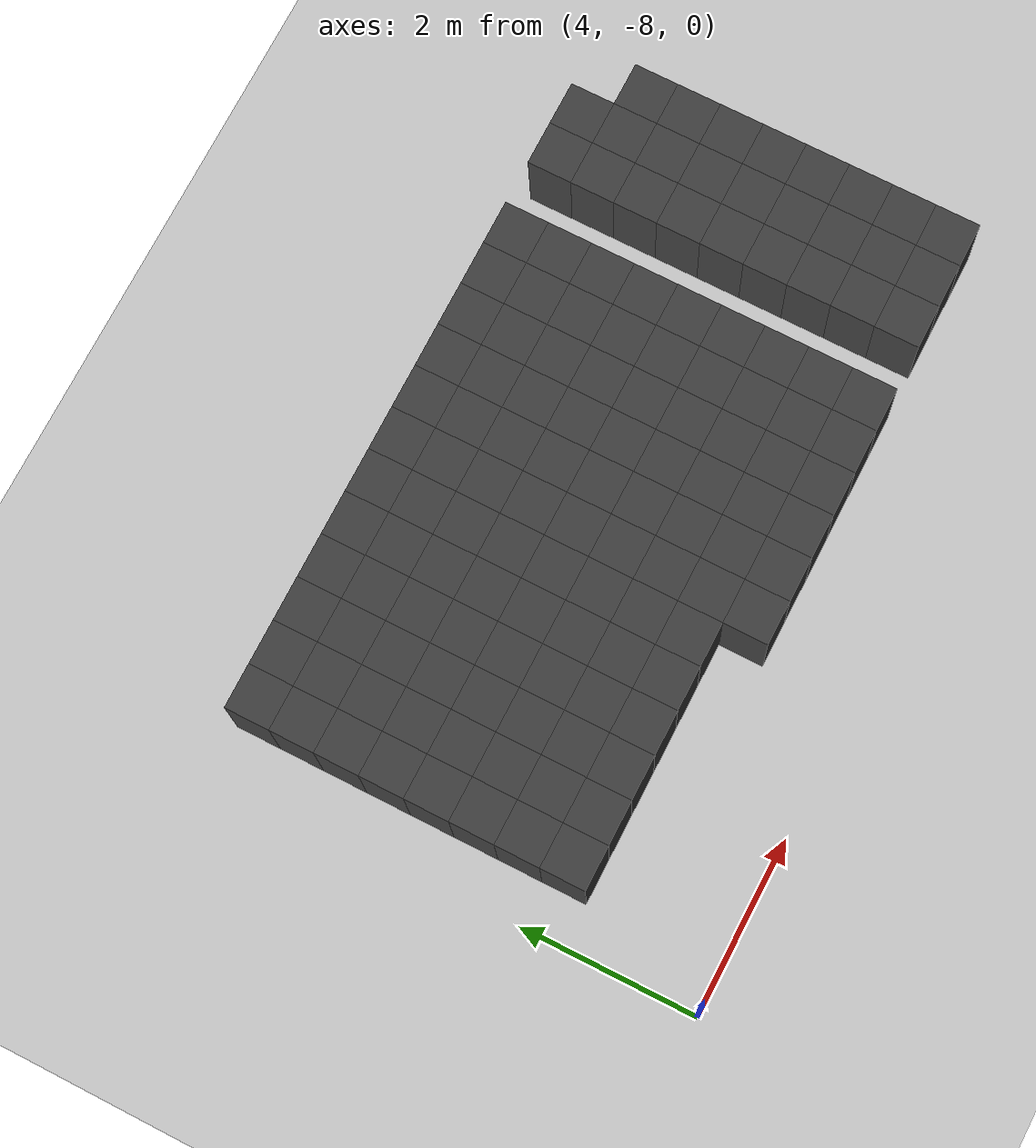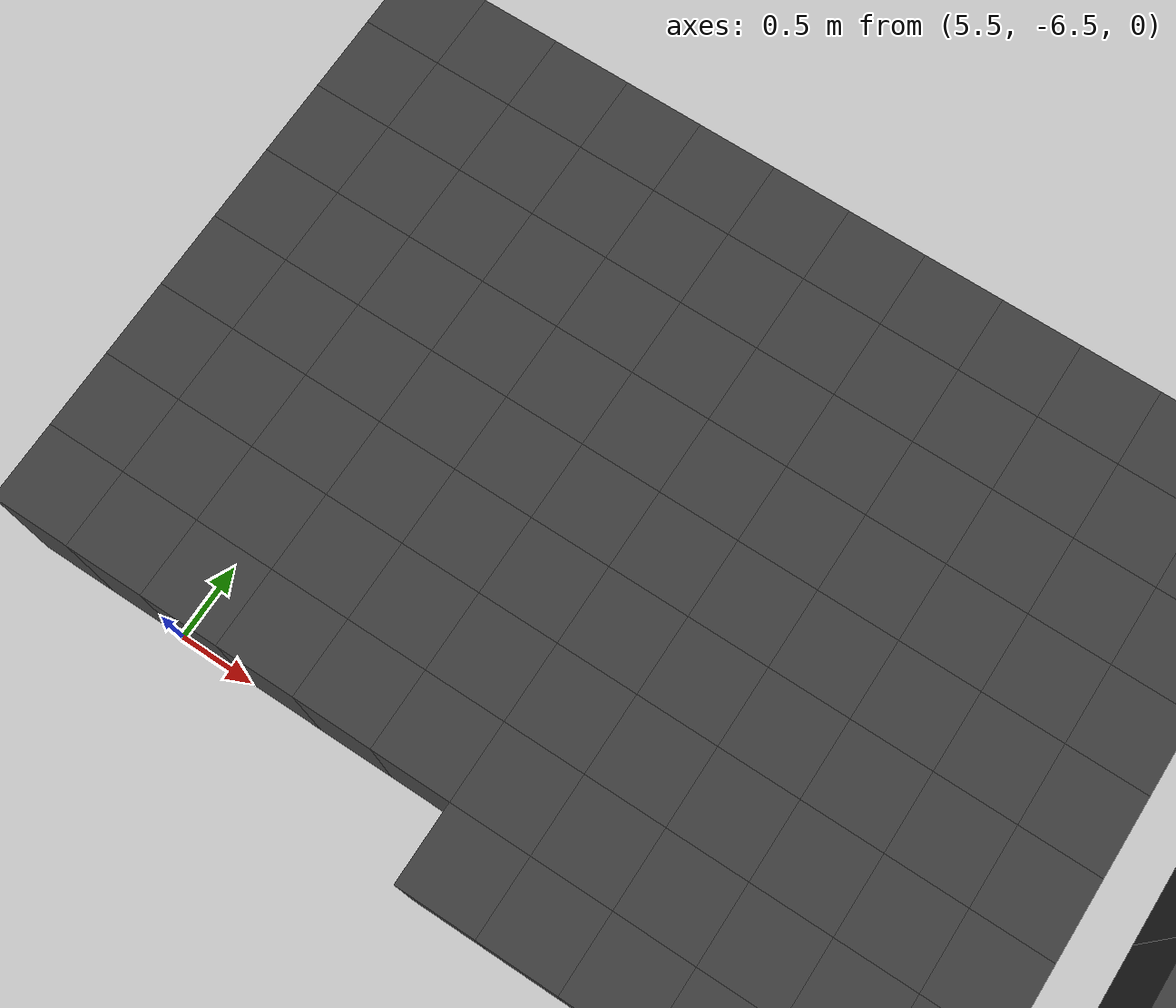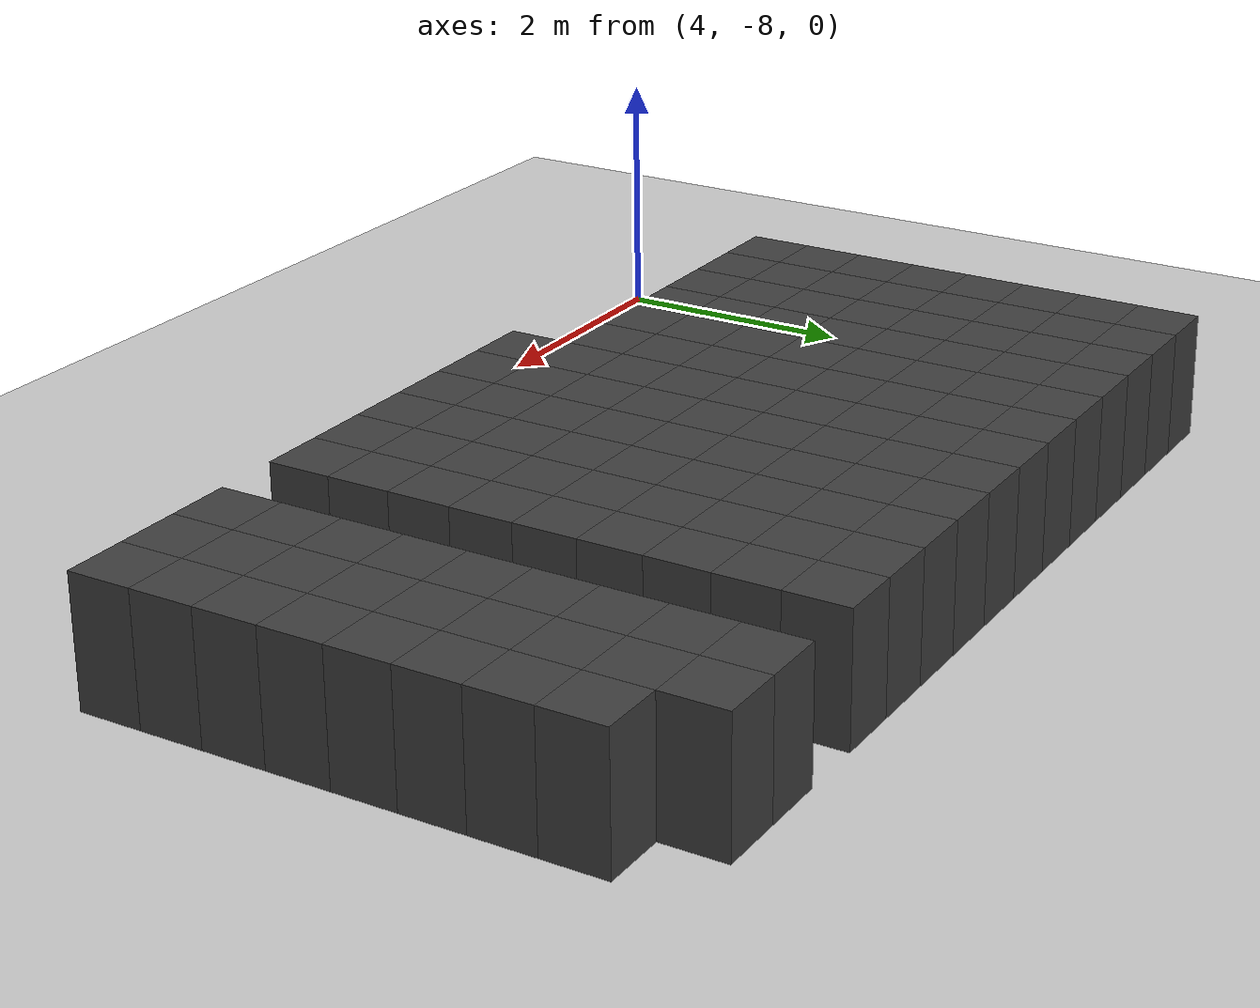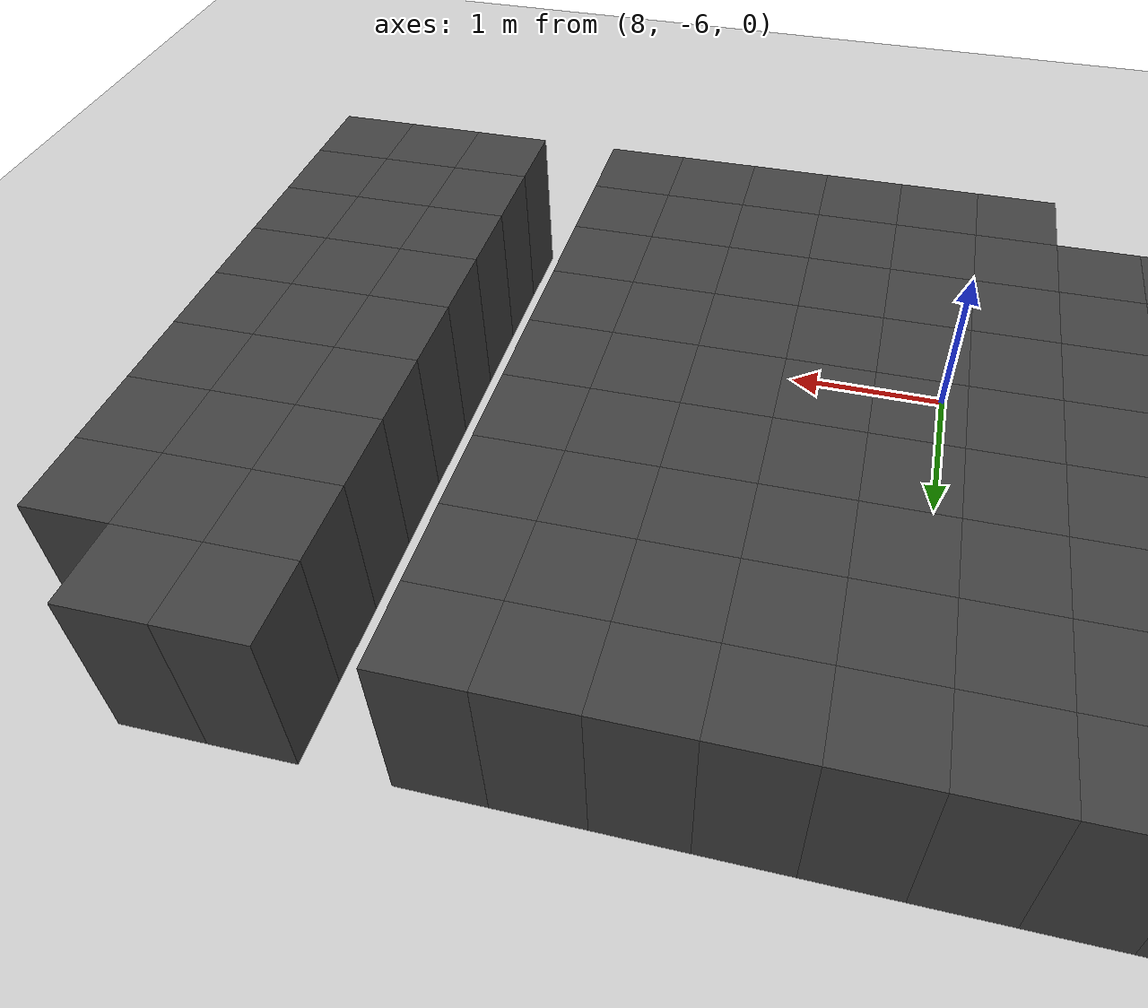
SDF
<sdf version="1.7">
 <world name="map_14735">
  <model name="ground_plane">
   <static>true</static>
   <link name="link">
    <collision name="collision">
     <geometry><plane><normal>0 0 1</normal><size>200 200</size></plane></geometry>
    </collision>
    <visual name="visual">
     <geometry><plane><normal>0 0 1</normal><size>200 200</size></plane></geometry>
     <material><ambient>0.8 0.8 0.8 1</ambient><diffuse>0.8 0.8 0.8 1</diffuse></material>
    </visual>
   </link>
  </model>
  <model name="maze_environment">
   <static>true</static>
   <link name="wall_967">
    <pose>4.750 -2.750 0.500 0 0 0</pose>
    <collision name="col"><geometry><box><size>0.5 0.5 1.0</size></box></geometry></collision>
    <visual name="vis">
     <geometry><box><size>0.5 0.5 1.0</size></box></geometry>
     <material><ambient>0.15 0.15 0.15 1</ambient><diffuse>0.25 0.25 0.25 1</diffuse></material>
    </visual>
   </link>
   <link name="wall_968">
    <pose>5.250 -2.750 0.500 0 0 0</pose>
    <collision name="col"><geometry><box><size>0.5 0.5 1.0</size></box></geometry></collision>
    <visual name="vis">
     <geometry><box><size>0.5 0.5 1.0</size></box></geometry>
     <material><ambient>0.15 0.15 0.15 1</ambient><diffuse>0.25 0.25 0.25 1</diffuse></material>
    </visual>
   </link>
   <link name="wall_969">
    <pose>5.750 -2.750 0.500 0 0 0</pose>
    <collision name="col"><geometry><box><size>0.5 0.5 1.0</size></box></geometry></collision>
    <visual name="vis">
     <geometry><box><size>0.5 0.5 1.0</size></box></geometry>
     <material><ambient>0.15 0.15 0.15 1</ambient><diffuse>0.25 0.25 0.25 1</diffuse></material>
    </visual>
   </link>
   <link name="wall_970">
    <pose>6.250 -2.750 0.500 0 0 0</pose>
    <collision name="col"><geometry><box><size>0.5 0.5 1.0</size></box></geometry></collision>
    <visual name="vis">
     <geometry><box><size>0.5 0.5 1.0</size></box></geometry>
     <material><ambient>0.15 0.15 0.15 1</ambient><diffuse>0.25 0.25 0.25 1</diffuse></material>
    </visual>
   </link>
   <link name="wall_971">
    <pose>6.750 -2.750 0.500 0 0 0</pose>
    <collision name="col"><geometry><box><size>0.5 0.5 1.0</size></box></geometry></collision>
    <visual name="vis">
     <geometry><box><size>0.5 0.5 1.0</size></box></geometry>
     <material><ambient>0.15 0.15 0.15 1</ambient><diffuse>0.25 0.25 0.25 1</diffuse></material>
    </visual>
   </link>
   <link name="wall_972">
    <pose>7.250 -2.750 0.500 0 0 0</pose>
    <collision name="col"><geometry><box><size>0.5 0.5 1.0</size></box></geometry></collision>
    <visual name="vis">
     <geometry><box><size>0.5 0.5 1.0</size></box></geometry>
     <material><ambient>0.15 0.15 0.15 1</ambient><diffuse>0.25 0.25 0.25 1</diffuse></material>
    </visual>
   </link>
   <link name="wall_973">
    <pose>7.750 -2.750 0.500 0 0 0</pose>
    <collision name="col"><geometry><box><size>0.5 0.5 1.0</size></box></geometry></collision>
    <visual name="vis">
     <geometry><box><size>0.5 0.5 1.0</size></box></geometry>
     <material><ambient>0.15 0.15 0.15 1</ambient><diffuse>0.25 0.25 0.25 1</diffuse></material>
    </visual>
   </link>
   <link name="wall_974">
    <pose>8.250 -2.750 0.500 0 0 0</pose>
    <collision name="col"><geometry><box><size>0.5 0.5 1.0</size></box></geometry></collision>
    <visual name="vis">
     <geometry><box><size>0.5 0.5 1.0</size></box></geometry>
     <material><ambient>0.15 0.15 0.15 1</ambient><diffuse>0.25 0.25 0.25 1</diffuse></material>
    </visual>
   </link>
   <link name="wall_975">
    <pose>8.750 -2.750 0.500 0 0 0</pose>
    <collision name="col"><geometry><box><size>0.5 0.5 1.0</size></box></geometry></collision>
    <visual name="vis">
     <geometry><box><size>0.5 0.5 1.0</size></box></geometry>
     <material><ambient>0.15 0.15 0.15 1</ambient><diffuse>0.25 0.25 0.25 1</diffuse></material>
    </visual>
   </link>
   <link name="wall_976">
    <pose>9.250 -2.750 0.500 0 0 0</pose>
    <collision name="col"><geometry><box><size>0.5 0.5 1.0</size></box></geometry></collision>
    <visual name="vis">
     <geometry><box><size>0.5 0.5 1.0</size></box></geometry>
     <material><ambient>0.15 0.15 0.15 1</ambient><diffuse>0.25 0.25 0.25 1</diffuse></material>
    </visual>
   </link>
   <link name="wall_977">
    <pose>9.750 -2.750 0.500 0 0 0</pose>
    <collision name="col"><geometry><box><size>0.5 0.5 1.0</size></box></geometry></collision>
    <visual name="vis">
     <geometry><box><size>0.5 0.5 1.0</size></box></geometry>
     <material><ambient>0.15 0.15 0.15 1</ambient><diffuse>0.25 0.25 0.25 1</diffuse></material>
    </visual>
   </link>
   <link name="wall_978">
    <pose>10.250 -2.750 0.500 0 0 0</pose>
    <collision name="col"><geometry><box><size>0.5 0.5 1.0</size></box></geometry></collision>
    <visual name="vis">
     <geometry><box><size>0.5 0.5 1.0</size></box></geometry>
     <material><ambient>0.15 0.15 0.15 1</ambient><diffuse>0.25 0.25 0.25 1</diffuse></material>
    </visual>
   </link>
   <link name="wall_979">
    <pose>11.250 -2.750 0.500 0 0 0</pose>
    <collision name="col"><geometry><box><size>0.5 0.5 1.0</size></box></geometry></collision>
    <visual name="vis">
     <geometry><box><size>0.5 0.5 1.0</size></box></geometry>
     <material><ambient>0.15 0.15 0.15 1</ambient><diffuse>0.25 0.25 0.25 1</diffuse></material>
    </visual>
   </link>
   <link name="wall_980">
    <pose>11.750 -2.750 0.500 0 0 0</pose>
    <collision name="col"><geometry><box><size>0.5 0.5 1.0</size></box></geometry></collision>
    <visual name="vis">
     <geometry><box><size>0.5 0.5 1.0</size></box></geometry>
     <material><ambient>0.15 0.15 0.15 1</ambient><diffuse>0.25 0.25 0.25 1</diffuse></material>
    </visual>
   </link>
   <link name="wall_1007">
    <pose>4.750 -3.250 0.500 0 0 0</pose>
    <collision name="col"><geometry><box><size>0.5 0.5 1.0</size></box></geometry></collision>
    <visual name="vis">
     <geometry><box><size>0.5 0.5 1.0</size></box></geometry>
     <material><ambient>0.15 0.15 0.15 1</ambient><diffuse>0.25 0.25 0.25 1</diffuse></material>
    </visual>
   </link>
   <link name="wall_1008">
    <pose>5.250 -3.250 0.500 0 0 0</pose>
    <collision name="col"><geometry><box><size>0.5 0.5 1.0</size></box></geometry></collision>
    <visual name="vis">
     <geometry><box><size>0.5 0.5 1.0</size></box></geometry>
     <material><ambient>0.15 0.15 0.15 1</ambient><diffuse>0.25 0.25 0.25 1</diffuse></material>
    </visual>
   </link>
   <link name="wall_1009">
    <pose>5.750 -3.250 0.500 0 0 0</pose>
    <collision name="col"><geometry><box><size>0.5 0.5 1.0</size></box></geometry></collision>
    <visual name="vis">
     <geometry><box><size>0.5 0.5 1.0</size></box></geometry>
     <material><ambient>0.15 0.15 0.15 1</ambient><diffuse>0.25 0.25 0.25 1</diffuse></material>
    </visual>
   </link>
   <link name="wall_1010">
    <pose>6.250 -3.250 0.500 0 0 0</pose>
    <collision name="col"><geometry><box><size>0.5 0.5 1.0</size></box></geometry></collision>
    <visual name="vis">
     <geometry><box><size>0.5 0.5 1.0</size></box></geometry>
     <material><ambient>0.15 0.15 0.15 1</ambient><diffuse>0.25 0.25 0.25 1</diffuse></material>
    </visual>
   </link>
   <link name="wall_1011">
    <pose>6.750 -3.250 0.500 0 0 0</pose>
    <collision name="col"><geometry><box><size>0.5 0.5 1.0</size></box></geometry></collision>
    <visual name="vis">
     <geometry><box><size>0.5 0.5 1.0</size></box></geometry>
     <material><ambient>0.15 0.15 0.15 1</ambient><diffuse>0.25 0.25 0.25 1</diffuse></material>
    </visual>
   </link>
   <link name="wall_1012">
    <pose>7.250 -3.250 0.500 0 0 0</pose>
    <collision name="col"><geometry><box><size>0.5 0.5 1.0</size></box></geometry></collision>
    <visual name="vis">
     <geometry><box><size>0.5 0.5 1.0</size></box></geometry>
     <material><ambient>0.15 0.15 0.15 1</ambient><diffuse>0.25 0.25 0.25 1</diffuse></material>
    </visual>
   </link>
   <link name="wall_1013">
    <pose>7.750 -3.250 0.500 0 0 0</pose>
    <collision name="col"><geometry><box><size>0.5 0.5 1.0</size></box></geometry></collision>
    <visual name="vis">
     <geometry><box><size>0.5 0.5 1.0</size></box></geometry>
     <material><ambient>0.15 0.15 0.15 1</ambient><diffuse>0.25 0.25 0.25 1</diffuse></material>
    </visual>
   </link>
   <link name="wall_1014">
    <pose>8.250 -3.250 0.500 0 0 0</pose>
    <collision name="col"><geometry><box><size>0.5 0.5 1.0</size></box></geometry></collision>
    <visual name="vis">
     <geometry><box><size>0.5 0.5 1.0</size></box></geometry>
     <material><ambient>0.15 0.15 0.15 1</ambient><diffuse>0.25 0.25 0.25 1</diffuse></material>
    </visual>
   </link>
   <link name="wall_1015">
    <pose>8.750 -3.250 0.500 0 0 0</pose>
    <collision name="col"><geometry><box><size>0.5 0.5 1.0</size></box></geometry></collision>
    <visual name="vis">
     <geometry><box><size>0.5 0.5 1.0</size></box></geometry>
     <material><ambient>0.15 0.15 0.15 1</ambient><diffuse>0.25 0.25 0.25 1</diffuse></material>
    </visual>
   </link>
   <link name="wall_1016">
    <pose>9.250 -3.250 0.500 0 0 0</pose>
    <collision name="col"><geometry><box><size>0.5 0.5 1.0</size></box></geometry></collision>
    <visual name="vis">
     <geometry><box><size>0.5 0.5 1.0</size></box></geometry>
     <material><ambient>0.15 0.15 0.15 1</ambient><diffuse>0.25 0.25 0.25 1</diffuse></material>
    </visual>
   </link>
   <link name="wall_1017">
    <pose>9.750 -3.250 0.500 0 0 0</pose>
    <collision name="col"><geometry><box><size>0.5 0.5 1.0</size></box></geometry></collision>
    <visual name="vis">
     <geometry><box><size>0.5 0.5 1.0</size></box></geometry>
     <material><ambient>0.15 0.15 0.15 1</ambient><diffuse>0.25 0.25 0.25 1</diffuse></material>
    </visual>
   </link>
   <link name="wall_1018">
    <pose>10.250 -3.250 0.500 0 0 0</pose>
    <collision name="col"><geometry><box><size>0.5 0.5 1.0</size></box></geometry></collision>
    <visual name="vis">
     <geometry><box><size>0.5 0.5 1.0</size></box></geometry>
     <material><ambient>0.15 0.15 0.15 1</ambient><diffuse>0.25 0.25 0.25 1</diffuse></material>
    </visual>
   </link>
   <link name="wall_1019">
    <pose>11.250 -3.250 0.500 0 0 0</pose>
    <collision name="col"><geometry><box><size>0.5 0.5 1.0</size></box></geometry></collision>
    <visual name="vis">
     <geometry><box><size>0.5 0.5 1.0</size></box></geometry>
     <material><ambient>0.15 0.15 0.15 1</ambient><diffuse>0.25 0.25 0.25 1</diffuse></material>
    </visual>
   </link>
   <link name="wall_1020">
    <pose>11.750 -3.250 0.500 0 0 0</pose>
    <collision name="col"><geometry><box><size>0.5 0.5 1.0</size></box></geometry></collision>
    <visual name="vis">
     <geometry><box><size>0.5 0.5 1.0</size></box></geometry>
     <material><ambient>0.15 0.15 0.15 1</ambient><diffuse>0.25 0.25 0.25 1</diffuse></material>
    </visual>
   </link>
   <link name="wall_1021">
    <pose>12.250 -3.250 0.500 0 0 0</pose>
    <collision name="col"><geometry><box><size>0.5 0.5 1.0</size></box></geometry></collision>
    <visual name="vis">
     <geometry><box><size>0.5 0.5 1.0</size></box></geometry>
     <material><ambient>0.15 0.15 0.15 1</ambient><diffuse>0.25 0.25 0.25 1</diffuse></material>
    </visual>
   </link>
   <link name="wall_1047">
    <pose>4.750 -3.750 0.500 0 0 0</pose>
    <collision name="col"><geometry><box><size>0.5 0.5 1.0</size></box></geometry></collision>
    <visual name="vis">
     <geometry><box><size>0.5 0.5 1.0</size></box></geometry>
     <material><ambient>0.15 0.15 0.15 1</ambient><diffuse>0.25 0.25 0.25 1</diffuse></material>
    </visual>
   </link>
   <link name="wall_1048">
    <pose>5.250 -3.750 0.500 0 0 0</pose>
    <collision name="col"><geometry><box><size>0.5 0.5 1.0</size></box></geometry></collision>
    <visual name="vis">
     <geometry><box><size>0.5 0.5 1.0</size></box></geometry>
     <material><ambient>0.15 0.15 0.15 1</ambient><diffuse>0.25 0.25 0.25 1</diffuse></material>
    </visual>
   </link>
   <link name="wall_1049">
    <pose>5.750 -3.750 0.500 0 0 0</pose>
    <collision name="col"><geometry><box><size>0.5 0.5 1.0</size></box></geometry></collision>
    <visual name="vis">
     <geometry><box><size>0.5 0.5 1.0</size></box></geometry>
     <material><ambient>0.15 0.15 0.15 1</ambient><diffuse>0.25 0.25 0.25 1</diffuse></material>
    </visual>
   </link>
   <link name="wall_1050">
    <pose>6.250 -3.750 0.500 0 0 0</pose>
    <collision name="col"><geometry><box><size>0.5 0.5 1.0</size></box></geometry></collision>
    <visual name="vis">
     <geometry><box><size>0.5 0.5 1.0</size></box></geometry>
     <material><ambient>0.15 0.15 0.15 1</ambient><diffuse>0.25 0.25 0.25 1</diffuse></material>
    </visual>
   </link>
   <link name="wall_1051">
    <pose>6.750 -3.750 0.500 0 0 0</pose>
    <collision name="col"><geometry><box><size>0.5 0.5 1.0</size></box></geometry></collision>
    <visual name="vis">
     <geometry><box><size>0.5 0.5 1.0</size></box></geometry>
     <material><ambient>0.15 0.15 0.15 1</ambient><diffuse>0.25 0.25 0.25 1</diffuse></material>
    </visual>
   </link>
   <link name="wall_1052">
    <pose>7.250 -3.750 0.500 0 0 0</pose>
    <collision name="col"><geometry><box><size>0.5 0.5 1.0</size></box></geometry></collision>
    <visual name="vis">
     <geometry><box><size>0.5 0.5 1.0</size></box></geometry>
     <material><ambient>0.15 0.15 0.15 1</ambient><diffuse>0.25 0.25 0.25 1</diffuse></material>
    </visual>
   </link>
   <link name="wall_1053">
    <pose>7.750 -3.750 0.500 0 0 0</pose>
    <collision name="col"><geometry><box><size>0.5 0.5 1.0</size></box></geometry></collision>
    <visual name="vis">
     <geometry><box><size>0.5 0.5 1.0</size></box></geometry>
     <material><ambient>0.15 0.15 0.15 1</ambient><diffuse>0.25 0.25 0.25 1</diffuse></material>
    </visual>
   </link>
   <link name="wall_1054">
    <pose>8.250 -3.750 0.500 0 0 0</pose>
    <collision name="col"><geometry><box><size>0.5 0.5 1.0</size></box></geometry></collision>
    <visual name="vis">
     <geometry><box><size>0.5 0.5 1.0</size></box></geometry>
     <material><ambient>0.15 0.15 0.15 1</ambient><diffuse>0.25 0.25 0.25 1</diffuse></material>
    </visual>
   </link>
   <link name="wall_1055">
    <pose>8.750 -3.750 0.500 0 0 0</pose>
    <collision name="col"><geometry><box><size>0.5 0.5 1.0</size></box></geometry></collision>
    <visual name="vis">
     <geometry><box><size>0.5 0.5 1.0</size></box></geometry>
     <material><ambient>0.15 0.15 0.15 1</ambient><diffuse>0.25 0.25 0.25 1</diffuse></material>
    </visual>
   </link>
   <link name="wall_1056">
    <pose>9.250 -3.750 0.500 0 0 0</pose>
    <collision name="col"><geometry><box><size>0.5 0.5 1.0</size></box></geometry></collision>
    <visual name="vis">
     <geometry><box><size>0.5 0.5 1.0</size></box></geometry>
     <material><ambient>0.15 0.15 0.15 1</ambient><diffuse>0.25 0.25 0.25 1</diffuse></material>
    </visual>
   </link>
   <link name="wall_1057">
    <pose>9.750 -3.750 0.500 0 0 0</pose>
    <collision name="col"><geometry><box><size>0.5 0.5 1.0</size></box></geometry></collision>
    <visual name="vis">
     <geometry><box><size>0.5 0.5 1.0</size></box></geometry>
     <material><ambient>0.15 0.15 0.15 1</ambient><diffuse>0.25 0.25 0.25 1</diffuse></material>
    </visual>
   </link>
   <link name="wall_1058">
    <pose>10.250 -3.750 0.500 0 0 0</pose>
    <collision name="col"><geometry><box><size>0.5 0.5 1.0</size></box></geometry></collision>
    <visual name="vis">
     <geometry><box><size>0.5 0.5 1.0</size></box></geometry>
     <material><ambient>0.15 0.15 0.15 1</ambient><diffuse>0.25 0.25 0.25 1</diffuse></material>
    </visual>
   </link>
   <link name="wall_1059">
    <pose>11.250 -3.750 0.500 0 0 0</pose>
    <collision name="col"><geometry><box><size>0.5 0.5 1.0</size></box></geometry></collision>
    <visual name="vis">
     <geometry><box><size>0.5 0.5 1.0</size></box></geometry>
     <material><ambient>0.15 0.15 0.15 1</ambient><diffuse>0.25 0.25 0.25 1</diffuse></material>
    </visual>
   </link>
   <link name="wall_1060">
    <pose>11.750 -3.750 0.500 0 0 0</pose>
    <collision name="col"><geometry><box><size>0.5 0.5 1.0</size></box></geometry></collision>
    <visual name="vis">
     <geometry><box><size>0.5 0.5 1.0</size></box></geometry>
     <material><ambient>0.15 0.15 0.15 1</ambient><diffuse>0.25 0.25 0.25 1</diffuse></material>
    </visual>
   </link>
   <link name="wall_1061">
    <pose>12.250 -3.750 0.500 0 0 0</pose>
    <collision name="col"><geometry><box><size>0.5 0.5 1.0</size></box></geometry></collision>
    <visual name="vis">
     <geometry><box><size>0.5 0.5 1.0</size></box></geometry>
     <material><ambient>0.15 0.15 0.15 1</ambient><diffuse>0.25 0.25 0.25 1</diffuse></material>
    </visual>
   </link>
   <link name="wall_1087">
    <pose>4.750 -4.250 0.500 0 0 0</pose>
    <collision name="col"><geometry><box><size>0.5 0.5 1.0</size></box></geometry></collision>
    <visual name="vis">
     <geometry><box><size>0.5 0.5 1.0</size></box></geometry>
     <material><ambient>0.15 0.15 0.15 1</ambient><diffuse>0.25 0.25 0.25 1</diffuse></material>
    </visual>
   </link>
   <link name="wall_1088">
    <pose>5.250 -4.250 0.500 0 0 0</pose>
    <collision name="col"><geometry><box><size>0.5 0.5 1.0</size></box></geometry></collision>
    <visual name="vis">
     <geometry><box><size>0.5 0.5 1.0</size></box></geometry>
     <material><ambient>0.15 0.15 0.15 1</ambient><diffuse>0.25 0.25 0.25 1</diffuse></material>
    </visual>
   </link>
   <link name="wall_1089">
    <pose>5.750 -4.250 0.500 0 0 0</pose>
    <collision name="col"><geometry><box><size>0.5 0.5 1.0</size></box></geometry></collision>
    <visual name="vis">
     <geometry><box><size>0.5 0.5 1.0</size></box></geometry>
     <material><ambient>0.15 0.15 0.15 1</ambient><diffuse>0.25 0.25 0.25 1</diffuse></material>
    </visual>
   </link>
   <link name="wall_1090">
    <pose>6.250 -4.250 0.500 0 0 0</pose>
    <collision name="col"><geometry><box><size>0.5 0.5 1.0</size></box></geometry></collision>
    <visual name="vis">
     <geometry><box><size>0.5 0.5 1.0</size></box></geometry>
     <material><ambient>0.15 0.15 0.15 1</ambient><diffuse>0.25 0.25 0.25 1</diffuse></material>
    </visual>
   </link>
   <link name="wall_1091">
    <pose>6.750 -4.250 0.500 0 0 0</pose>
    <collision name="col"><geometry><box><size>0.5 0.5 1.0</size></box></geometry></collision>
    <visual name="vis">
     <geometry><box><size>0.5 0.5 1.0</size></box></geometry>
     <material><ambient>0.15 0.15 0.15 1</ambient><diffuse>0.25 0.25 0.25 1</diffuse></material>
    </visual>
   </link>
   <link name="wall_1092">
    <pose>7.250 -4.250 0.500 0 0 0</pose>
    <collision name="col"><geometry><box><size>0.5 0.5 1.0</size></box></geometry></collision>
    <visual name="vis">
     <geometry><box><size>0.5 0.5 1.0</size></box></geometry>
     <material><ambient>0.15 0.15 0.15 1</ambient><diffuse>0.25 0.25 0.25 1</diffuse></material>
    </visual>
   </link>
   <link name="wall_1093">
    <pose>7.750 -4.250 0.500 0 0 0</pose>
    <collision name="col"><geometry><box><size>0.5 0.5 1.0</size></box></geometry></collision>
    <visual name="vis">
     <geometry><box><size>0.5 0.5 1.0</size></box></geometry>
     <material><ambient>0.15 0.15 0.15 1</ambient><diffuse>0.25 0.25 0.25 1</diffuse></material>
    </visual>
   </link>
   <link name="wall_1094">
    <pose>8.250 -4.250 0.500 0 0 0</pose>
    <collision name="col"><geometry><box><size>0.5 0.5 1.0</size></box></geometry></collision>
    <visual name="vis">
     <geometry><box><size>0.5 0.5 1.0</size></box></geometry>
     <material><ambient>0.15 0.15 0.15 1</ambient><diffuse>0.25 0.25 0.25 1</diffuse></material>
    </visual>
   </link>
   <link name="wall_1095">
    <pose>8.750 -4.250 0.500 0 0 0</pose>
    <collision name="col"><geometry><box><size>0.5 0.5 1.0</size></box></geometry></collision>
    <visual name="vis">
     <geometry><box><size>0.5 0.5 1.0</size></box></geometry>
     <material><ambient>0.15 0.15 0.15 1</ambient><diffuse>0.25 0.25 0.25 1</diffuse></material>
    </visual>
   </link>
   <link name="wall_1096">
    <pose>9.250 -4.250 0.500 0 0 0</pose>
    <collision name="col"><geometry><box><size>0.5 0.5 1.0</size></box></geometry></collision>
    <visual name="vis">
     <geometry><box><size>0.5 0.5 1.0</size></box></geometry>
     <material><ambient>0.15 0.15 0.15 1</ambient><diffuse>0.25 0.25 0.25 1</diffuse></material>
    </visual>
   </link>
   <link name="wall_1097">
    <pose>9.750 -4.250 0.500 0 0 0</pose>
    <collision name="col"><geometry><box><size>0.5 0.5 1.0</size></box></geometry></collision>
    <visual name="vis">
     <geometry><box><size>0.5 0.5 1.0</size></box></geometry>
     <material><ambient>0.15 0.15 0.15 1</ambient><diffuse>0.25 0.25 0.25 1</diffuse></material>
    </visual>
   </link>
   <link name="wall_1098">
    <pose>10.250 -4.250 0.500 0 0 0</pose>
    <collision name="col"><geometry><box><size>0.5 0.5 1.0</size></box></geometry></collision>
    <visual name="vis">
     <geometry><box><size>0.5 0.5 1.0</size></box></geometry>
     <material><ambient>0.15 0.15 0.15 1</ambient><diffuse>0.25 0.25 0.25 1</diffuse></material>
    </visual>
   </link>
   <link name="wall_1099">
    <pose>11.250 -4.250 0.500 0 0 0</pose>
    <collision name="col"><geometry><box><size>0.5 0.5 1.0</size></box></geometry></collision>
    <visual name="vis">
     <geometry><box><size>0.5 0.5 1.0</size></box></geometry>
     <material><ambient>0.15 0.15 0.15 1</ambient><diffuse>0.25 0.25 0.25 1</diffuse></material>
    </visual>
   </link>
   <link name="wall_1100">
    <pose>11.750 -4.250 0.500 0 0 0</pose>
    <collision name="col"><geometry><box><size>0.5 0.5 1.0</size></box></geometry></collision>
    <visual name="vis">
     <geometry><box><size>0.5 0.5 1.0</size></box></geometry>
     <material><ambient>0.15 0.15 0.15 1</ambient><diffuse>0.25 0.25 0.25 1</diffuse></material>
    </visual>
   </link>
   <link name="wall_1101">
    <pose>12.250 -4.250 0.500 0 0 0</pose>
    <collision name="col"><geometry><box><size>0.5 0.5 1.0</size></box></geometry></collision>
    <visual name="vis">
     <geometry><box><size>0.5 0.5 1.0</size></box></geometry>
     <material><ambient>0.15 0.15 0.15 1</ambient><diffuse>0.25 0.25 0.25 1</diffuse></material>
    </visual>
   </link>
   <link name="wall_1127">
    <pose>4.750 -4.750 0.500 0 0 0</pose>
    <collision name="col"><geometry><box><size>0.5 0.5 1.0</size></box></geometry></collision>
    <visual name="vis">
     <geometry><box><size>0.5 0.5 1.0</size></box></geometry>
     <material><ambient>0.15 0.15 0.15 1</ambient><diffuse>0.25 0.25 0.25 1</diffuse></material>
    </visual>
   </link>
   <link name="wall_1128">
    <pose>5.250 -4.750 0.500 0 0 0</pose>
    <collision name="col"><geometry><box><size>0.5 0.5 1.0</size></box></geometry></collision>
    <visual name="vis">
     <geometry><box><size>0.5 0.5 1.0</size></box></geometry>
     <material><ambient>0.15 0.15 0.15 1</ambient><diffuse>0.25 0.25 0.25 1</diffuse></material>
    </visual>
   </link>
   <link name="wall_1129">
    <pose>5.750 -4.750 0.500 0 0 0</pose>
    <collision name="col"><geometry><box><size>0.5 0.5 1.0</size></box></geometry></collision>
    <visual name="vis">
     <geometry><box><size>0.5 0.5 1.0</size></box></geometry>
     <material><ambient>0.15 0.15 0.15 1</ambient><diffuse>0.25 0.25 0.25 1</diffuse></material>
    </visual>
   </link>
   <link name="wall_1130">
    <pose>6.250 -4.750 0.500 0 0 0</pose>
    <collision name="col"><geometry><box><size>0.5 0.5 1.0</size></box></geometry></collision>
    <visual name="vis">
     <geometry><box><size>0.5 0.5 1.0</size></box></geometry>
     <material><ambient>0.15 0.15 0.15 1</ambient><diffuse>0.25 0.25 0.25 1</diffuse></material>
    </visual>
   </link>
   <link name="wall_1131">
    <pose>6.750 -4.750 0.500 0 0 0</pose>
    <collision name="col"><geometry><box><size>0.5 0.5 1.0</size></box></geometry></collision>
    <visual name="vis">
     <geometry><box><size>0.5 0.5 1.0</size></box></geometry>
     <material><ambient>0.15 0.15 0.15 1</ambient><diffuse>0.25 0.25 0.25 1</diffuse></material>
    </visual>
   </link>
   <link name="wall_1132">
    <pose>7.250 -4.750 0.500 0 0 0</pose>
    <collision name="col"><geometry><box><size>0.5 0.5 1.0</size></box></geometry></collision>
    <visual name="vis">
     <geometry><box><size>0.5 0.5 1.0</size></box></geometry>
     <material><ambient>0.15 0.15 0.15 1</ambient><diffuse>0.25 0.25 0.25 1</diffuse></material>
    </visual>
   </link>
   <link name="wall_1133">
    <pose>7.750 -4.750 0.500 0 0 0</pose>
    <collision name="col"><geometry><box><size>0.5 0.5 1.0</size></box></geometry></collision>
    <visual name="vis">
     <geometry><box><size>0.5 0.5 1.0</size></box></geometry>
     <material><ambient>0.15 0.15 0.15 1</ambient><diffuse>0.25 0.25 0.25 1</diffuse></material>
    </visual>
   </link>
   <link name="wall_1134">
    <pose>8.250 -4.750 0.500 0 0 0</pose>
    <collision name="col"><geometry><box><size>0.5 0.5 1.0</size></box></geometry></collision>
    <visual name="vis">
     <geometry><box><size>0.5 0.5 1.0</size></box></geometry>
     <material><ambient>0.15 0.15 0.15 1</ambient><diffuse>0.25 0.25 0.25 1</diffuse></material>
    </visual>
   </link>
   <link name="wall_1135">
    <pose>8.750 -4.750 0.500 0 0 0</pose>
    <collision name="col"><geometry><box><size>0.5 0.5 1.0</size></box></geometry></collision>
    <visual name="vis">
     <geometry><box><size>0.5 0.5 1.0</size></box></geometry>
     <material><ambient>0.15 0.15 0.15 1</ambient><diffuse>0.25 0.25 0.25 1</diffuse></material>
    </visual>
   </link>
   <link name="wall_1136">
    <pose>9.250 -4.750 0.500 0 0 0</pose>
    <collision name="col"><geometry><box><size>0.5 0.5 1.0</size></box></geometry></collision>
    <visual name="vis">
     <geometry><box><size>0.5 0.5 1.0</size></box></geometry>
     <material><ambient>0.15 0.15 0.15 1</ambient><diffuse>0.25 0.25 0.25 1</diffuse></material>
    </visual>
   </link>
   <link name="wall_1137">
    <pose>9.750 -4.750 0.500 0 0 0</pose>
    <collision name="col"><geometry><box><size>0.5 0.5 1.0</size></box></geometry></collision>
    <visual name="vis">
     <geometry><box><size>0.5 0.5 1.0</size></box></geometry>
     <material><ambient>0.15 0.15 0.15 1</ambient><diffuse>0.25 0.25 0.25 1</diffuse></material>
    </visual>
   </link>
   <link name="wall_1138">
    <pose>10.250 -4.750 0.500 0 0 0</pose>
    <collision name="col"><geometry><box><size>0.5 0.5 1.0</size></box></geometry></collision>
    <visual name="vis">
     <geometry><box><size>0.5 0.5 1.0</size></box></geometry>
     <material><ambient>0.15 0.15 0.15 1</ambient><diffuse>0.25 0.25 0.25 1</diffuse></material>
    </visual>
   </link>
   <link name="wall_1139">
    <pose>11.250 -4.750 0.500 0 0 0</pose>
    <collision name="col"><geometry><box><size>0.5 0.5 1.0</size></box></geometry></collision>
    <visual name="vis">
     <geometry><box><size>0.5 0.5 1.0</size></box></geometry>
     <material><ambient>0.15 0.15 0.15 1</ambient><diffuse>0.25 0.25 0.25 1</diffuse></material>
    </visual>
   </link>
   <link name="wall_1140">
    <pose>11.750 -4.750 0.500 0 0 0</pose>
    <collision name="col"><geometry><box><size>0.5 0.5 1.0</size></box></geometry></collision>
    <visual name="vis">
     <geometry><box><size>0.5 0.5 1.0</size></box></geometry>
     <material><ambient>0.15 0.15 0.15 1</ambient><diffuse>0.25 0.25 0.25 1</diffuse></material>
    </visual>
   </link>
   <link name="wall_1141">
    <pose>12.250 -4.750 0.500 0 0 0</pose>
    <collision name="col"><geometry><box><size>0.5 0.5 1.0</size></box></geometry></collision>
    <visual name="vis">
     <geometry><box><size>0.5 0.5 1.0</size></box></geometry>
     <material><ambient>0.15 0.15 0.15 1</ambient><diffuse>0.25 0.25 0.25 1</diffuse></material>
    </visual>
   </link>
   <link name="wall_1165">
    <pose>4.750 -5.250 0.500 0 0 0</pose>
    <collision name="col"><geometry><box><size>0.5 0.5 1.0</size></box></geometry></collision>
    <visual name="vis">
     <geometry><box><size>0.5 0.5 1.0</size></box></geometry>
     <material><ambient>0.15 0.15 0.15 1</ambient><diffuse>0.25 0.25 0.25 1</diffuse></material>
    </visual>
   </link>
   <link name="wall_1166">
    <pose>5.250 -5.250 0.500 0 0 0</pose>
    <collision name="col"><geometry><box><size>0.5 0.5 1.0</size></box></geometry></collision>
    <visual name="vis">
     <geometry><box><size>0.5 0.5 1.0</size></box></geometry>
     <material><ambient>0.15 0.15 0.15 1</ambient><diffuse>0.25 0.25 0.25 1</diffuse></material>
    </visual>
   </link>
   <link name="wall_1167">
    <pose>5.750 -5.250 0.500 0 0 0</pose>
    <collision name="col"><geometry><box><size>0.5 0.5 1.0</size></box></geometry></collision>
    <visual name="vis">
     <geometry><box><size>0.5 0.5 1.0</size></box></geometry>
     <material><ambient>0.15 0.15 0.15 1</ambient><diffuse>0.25 0.25 0.25 1</diffuse></material>
    </visual>
   </link>
   <link name="wall_1168">
    <pose>6.250 -5.250 0.500 0 0 0</pose>
    <collision name="col"><geometry><box><size>0.5 0.5 1.0</size></box></geometry></collision>
    <visual name="vis">
     <geometry><box><size>0.5 0.5 1.0</size></box></geometry>
     <material><ambient>0.15 0.15 0.15 1</ambient><diffuse>0.25 0.25 0.25 1</diffuse></material>
    </visual>
   </link>
   <link name="wall_1169">
    <pose>6.750 -5.250 0.500 0 0 0</pose>
    <collision name="col"><geometry><box><size>0.5 0.5 1.0</size></box></geometry></collision>
    <visual name="vis">
     <geometry><box><size>0.5 0.5 1.0</size></box></geometry>
     <material><ambient>0.15 0.15 0.15 1</ambient><diffuse>0.25 0.25 0.25 1</diffuse></material>
    </visual>
   </link>
   <link name="wall_1170">
    <pose>7.250 -5.250 0.500 0 0 0</pose>
    <collision name="col"><geometry><box><size>0.5 0.5 1.0</size></box></geometry></collision>
    <visual name="vis">
     <geometry><box><size>0.5 0.5 1.0</size></box></geometry>
     <material><ambient>0.15 0.15 0.15 1</ambient><diffuse>0.25 0.25 0.25 1</diffuse></material>
    </visual>
   </link>
   <link name="wall_1171">
    <pose>7.750 -5.250 0.500 0 0 0</pose>
    <collision name="col"><geometry><box><size>0.5 0.5 1.0</size></box></geometry></collision>
    <visual name="vis">
     <geometry><box><size>0.5 0.5 1.0</size></box></geometry>
     <material><ambient>0.15 0.15 0.15 1</ambient><diffuse>0.25 0.25 0.25 1</diffuse></material>
    </visual>
   </link>
   <link name="wall_1172">
    <pose>8.250 -5.250 0.500 0 0 0</pose>
    <collision name="col"><geometry><box><size>0.5 0.5 1.0</size></box></geometry></collision>
    <visual name="vis">
     <geometry><box><size>0.5 0.5 1.0</size></box></geometry>
     <material><ambient>0.15 0.15 0.15 1</ambient><diffuse>0.25 0.25 0.25 1</diffuse></material>
    </visual>
   </link>
   <link name="wall_1173">
    <pose>8.750 -5.250 0.500 0 0 0</pose>
    <collision name="col"><geometry><box><size>0.5 0.5 1.0</size></box></geometry></collision>
    <visual name="vis">
     <geometry><box><size>0.5 0.5 1.0</size></box></geometry>
     <material><ambient>0.15 0.15 0.15 1</ambient><diffuse>0.25 0.25 0.25 1</diffuse></material>
    </visual>
   </link>
   <link name="wall_1174">
    <pose>9.250 -5.250 0.500 0 0 0</pose>
    <collision name="col"><geometry><box><size>0.5 0.5 1.0</size></box></geometry></collision>
    <visual name="vis">
     <geometry><box><size>0.5 0.5 1.0</size></box></geometry>
     <material><ambient>0.15 0.15 0.15 1</ambient><diffuse>0.25 0.25 0.25 1</diffuse></material>
    </visual>
   </link>
   <link name="wall_1175">
    <pose>9.750 -5.250 0.500 0 0 0</pose>
    <collision name="col"><geometry><box><size>0.5 0.5 1.0</size></box></geometry></collision>
    <visual name="vis">
     <geometry><box><size>0.5 0.5 1.0</size></box></geometry>
     <material><ambient>0.15 0.15 0.15 1</ambient><diffuse>0.25 0.25 0.25 1</diffuse></material>
    </visual>
   </link>
   <link name="wall_1176">
    <pose>10.250 -5.250 0.500 0 0 0</pose>
    <collision name="col"><geometry><box><size>0.5 0.5 1.0</size></box></geometry></collision>
    <visual name="vis">
     <geometry><box><size>0.5 0.5 1.0</size></box></geometry>
     <material><ambient>0.15 0.15 0.15 1</ambient><diffuse>0.25 0.25 0.25 1</diffuse></material>
    </visual>
   </link>
   <link name="wall_1177">
    <pose>11.250 -5.250 0.500 0 0 0</pose>
    <collision name="col"><geometry><box><size>0.5 0.5 1.0</size></box></geometry></collision>
    <visual name="vis">
     <geometry><box><size>0.5 0.5 1.0</size></box></geometry>
     <material><ambient>0.15 0.15 0.15 1</ambient><diffuse>0.25 0.25 0.25 1</diffuse></material>
    </visual>
   </link>
   <link name="wall_1178">
    <pose>11.750 -5.250 0.500 0 0 0</pose>
    <collision name="col"><geometry><box><size>0.5 0.5 1.0</size></box></geometry></collision>
    <visual name="vis">
     <geometry><box><size>0.5 0.5 1.0</size></box></geometry>
     <material><ambient>0.15 0.15 0.15 1</ambient><diffuse>0.25 0.25 0.25 1</diffuse></material>
    </visual>
   </link>
   <link name="wall_1179">
    <pose>12.250 -5.250 0.500 0 0 0</pose>
    <collision name="col"><geometry><box><size>0.5 0.5 1.0</size></box></geometry></collision>
    <visual name="vis">
     <geometry><box><size>0.5 0.5 1.0</size></box></geometry>
     <material><ambient>0.15 0.15 0.15 1</ambient><diffuse>0.25 0.25 0.25 1</diffuse></material>
    </visual>
   </link>
   <link name="wall_1203">
    <pose>4.750 -5.750 0.500 0 0 0</pose>
    <collision name="col"><geometry><box><size>0.5 0.5 1.0</size></box></geometry></collision>
    <visual name="vis">
     <geometry><box><size>0.5 0.5 1.0</size></box></geometry>
     <material><ambient>0.15 0.15 0.15 1</ambient><diffuse>0.25 0.25 0.25 1</diffuse></material>
    </visual>
   </link>
   <link name="wall_1204">
    <pose>5.250 -5.750 0.500 0 0 0</pose>
    <collision name="col"><geometry><box><size>0.5 0.5 1.0</size></box></geometry></collision>
    <visual name="vis">
     <geometry><box><size>0.5 0.5 1.0</size></box></geometry>
     <material><ambient>0.15 0.15 0.15 1</ambient><diffuse>0.25 0.25 0.25 1</diffuse></material>
    </visual>
   </link>
   <link name="wall_1205">
    <pose>5.750 -5.750 0.500 0 0 0</pose>
    <collision name="col"><geometry><box><size>0.5 0.5 1.0</size></box></geometry></collision>
    <visual name="vis">
     <geometry><box><size>0.5 0.5 1.0</size></box></geometry>
     <material><ambient>0.15 0.15 0.15 1</ambient><diffuse>0.25 0.25 0.25 1</diffuse></material>
    </visual>
   </link>
   <link name="wall_1206">
    <pose>6.250 -5.750 0.500 0 0 0</pose>
    <collision name="col"><geometry><box><size>0.5 0.5 1.0</size></box></geometry></collision>
    <visual name="vis">
     <geometry><box><size>0.5 0.5 1.0</size></box></geometry>
     <material><ambient>0.15 0.15 0.15 1</ambient><diffuse>0.25 0.25 0.25 1</diffuse></material>
    </visual>
   </link>
   <link name="wall_1207">
    <pose>6.750 -5.750 0.500 0 0 0</pose>
    <collision name="col"><geometry><box><size>0.5 0.5 1.0</size></box></geometry></collision>
    <visual name="vis">
     <geometry><box><size>0.5 0.5 1.0</size></box></geometry>
     <material><ambient>0.15 0.15 0.15 1</ambient><diffuse>0.25 0.25 0.25 1</diffuse></material>
    </visual>
   </link>
   <link name="wall_1208">
    <pose>7.250 -5.750 0.500 0 0 0</pose>
    <collision name="col"><geometry><box><size>0.5 0.5 1.0</size></box></geometry></collision>
    <visual name="vis">
     <geometry><box><size>0.5 0.5 1.0</size></box></geometry>
     <material><ambient>0.15 0.15 0.15 1</ambient><diffuse>0.25 0.25 0.25 1</diffuse></material>
    </visual>
   </link>
   <link name="wall_1209">
    <pose>7.750 -5.750 0.500 0 0 0</pose>
    <collision name="col"><geometry><box><size>0.5 0.5 1.0</size></box></geometry></collision>
    <visual name="vis">
     <geometry><box><size>0.5 0.5 1.0</size></box></geometry>
     <material><ambient>0.15 0.15 0.15 1</ambient><diffuse>0.25 0.25 0.25 1</diffuse></material>
    </visual>
   </link>
   <link name="wall_1210">
    <pose>8.250 -5.750 0.500 0 0 0</pose>
    <collision name="col"><geometry><box><size>0.5 0.5 1.0</size></box></geometry></collision>
    <visual name="vis">
     <geometry><box><size>0.5 0.5 1.0</size></box></geometry>
     <material><ambient>0.15 0.15 0.15 1</ambient><diffuse>0.25 0.25 0.25 1</diffuse></material>
    </visual>
   </link>
   <link name="wall_1211">
    <pose>8.750 -5.750 0.500 0 0 0</pose>
    <collision name="col"><geometry><box><size>0.5 0.5 1.0</size></box></geometry></collision>
    <visual name="vis">
     <geometry><box><size>0.5 0.5 1.0</size></box></geometry>
     <material><ambient>0.15 0.15 0.15 1</ambient><diffuse>0.25 0.25 0.25 1</diffuse></material>
    </visual>
   </link>
   <link name="wall_1212">
    <pose>9.250 -5.750 0.500 0 0 0</pose>
    <collision name="col"><geometry><box><size>0.5 0.5 1.0</size></box></geometry></collision>
    <visual name="vis">
     <geometry><box><size>0.5 0.5 1.0</size></box></geometry>
     <material><ambient>0.15 0.15 0.15 1</ambient><diffuse>0.25 0.25 0.25 1</diffuse></material>
    </visual>
   </link>
   <link name="wall_1213">
    <pose>9.750 -5.750 0.500 0 0 0</pose>
    <collision name="col"><geometry><box><size>0.5 0.5 1.0</size></box></geometry></collision>
    <visual name="vis">
     <geometry><box><size>0.5 0.5 1.0</size></box></geometry>
     <material><ambient>0.15 0.15 0.15 1</ambient><diffuse>0.25 0.25 0.25 1</diffuse></material>
    </visual>
   </link>
   <link name="wall_1214">
    <pose>10.250 -5.750 0.500 0 0 0</pose>
    <collision name="col"><geometry><box><size>0.5 0.5 1.0</size></box></geometry></collision>
    <visual name="vis">
     <geometry><box><size>0.5 0.5 1.0</size></box></geometry>
     <material><ambient>0.15 0.15 0.15 1</ambient><diffuse>0.25 0.25 0.25 1</diffuse></material>
    </visual>
   </link>
   <link name="wall_1215">
    <pose>11.250 -5.750 0.500 0 0 0</pose>
    <collision name="col"><geometry><box><size>0.5 0.5 1.0</size></box></geometry></collision>
    <visual name="vis">
     <geometry><box><size>0.5 0.5 1.0</size></box></geometry>
     <material><ambient>0.15 0.15 0.15 1</ambient><diffuse>0.25 0.25 0.25 1</diffuse></material>
    </visual>
   </link>
   <link name="wall_1216">
    <pose>11.750 -5.750 0.500 0 0 0</pose>
    <collision name="col"><geometry><box><size>0.5 0.5 1.0</size></box></geometry></collision>
    <visual name="vis">
     <geometry><box><size>0.5 0.5 1.0</size></box></geometry>
     <material><ambient>0.15 0.15 0.15 1</ambient><diffuse>0.25 0.25 0.25 1</diffuse></material>
    </visual>
   </link>
   <link name="wall_1217">
    <pose>12.250 -5.750 0.500 0 0 0</pose>
    <collision name="col"><geometry><box><size>0.5 0.5 1.0</size></box></geometry></collision>
    <visual name="vis">
     <geometry><box><size>0.5 0.5 1.0</size></box></geometry>
     <material><ambient>0.15 0.15 0.15 1</ambient><diffuse>0.25 0.25 0.25 1</diffuse></material>
    </visual>
   </link>
   <link name="wall_1241">
    <pose>4.750 -6.250 0.500 0 0 0</pose>
    <collision name="col"><geometry><box><size>0.5 0.5 1.0</size></box></geometry></collision>
    <visual name="vis">
     <geometry><box><size>0.5 0.5 1.0</size></box></geometry>
     <material><ambient>0.15 0.15 0.15 1</ambient><diffuse>0.25 0.25 0.25 1</diffuse></material>
    </visual>
   </link>
   <link name="wall_1242">
    <pose>5.250 -6.250 0.500 0 0 0</pose>
    <collision name="col"><geometry><box><size>0.5 0.5 1.0</size></box></geometry></collision>
    <visual name="vis">
     <geometry><box><size>0.5 0.5 1.0</size></box></geometry>
     <material><ambient>0.15 0.15 0.15 1</ambient><diffuse>0.25 0.25 0.25 1</diffuse></material>
    </visual>
   </link>
   <link name="wall_1243">
    <pose>5.750 -6.250 0.500 0 0 0</pose>
    <collision name="col"><geometry><box><size>0.5 0.5 1.0</size></box></geometry></collision>
    <visual name="vis">
     <geometry><box><size>0.5 0.5 1.0</size></box></geometry>
     <material><ambient>0.15 0.15 0.15 1</ambient><diffuse>0.25 0.25 0.25 1</diffuse></material>
    </visual>
   </link>
   <link name="wall_1244">
    <pose>6.250 -6.250 0.500 0 0 0</pose>
    <collision name="col"><geometry><box><size>0.5 0.5 1.0</size></box></geometry></collision>
    <visual name="vis">
     <geometry><box><size>0.5 0.5 1.0</size></box></geometry>
     <material><ambient>0.15 0.15 0.15 1</ambient><diffuse>0.25 0.25 0.25 1</diffuse></material>
    </visual>
   </link>
   <link name="wall_1245">
    <pose>6.750 -6.250 0.500 0 0 0</pose>
    <collision name="col"><geometry><box><size>0.5 0.5 1.0</size></box></geometry></collision>
    <visual name="vis">
     <geometry><box><size>0.5 0.5 1.0</size></box></geometry>
     <material><ambient>0.15 0.15 0.15 1</ambient><diffuse>0.25 0.25 0.25 1</diffuse></material>
    </visual>
   </link>
   <link name="wall_1246">
    <pose>7.250 -6.250 0.500 0 0 0</pose>
    <collision name="col"><geometry><box><size>0.5 0.5 1.0</size></box></geometry></collision>
    <visual name="vis">
     <geometry><box><size>0.5 0.5 1.0</size></box></geometry>
     <material><ambient>0.15 0.15 0.15 1</ambient><diffuse>0.25 0.25 0.25 1</diffuse></material>
    </visual>
   </link>
   <link name="wall_1247">
    <pose>7.750 -6.250 0.500 0 0 0</pose>
    <collision name="col"><geometry><box><size>0.5 0.5 1.0</size></box></geometry></collision>
    <visual name="vis">
     <geometry><box><size>0.5 0.5 1.0</size></box></geometry>
     <material><ambient>0.15 0.15 0.15 1</ambient><diffuse>0.25 0.25 0.25 1</diffuse></material>
    </visual>
   </link>
   <link name="wall_1248">
    <pose>8.250 -6.250 0.500 0 0 0</pose>
    <collision name="col"><geometry><box><size>0.5 0.5 1.0</size></box></geometry></collision>
    <visual name="vis">
     <geometry><box><size>0.5 0.5 1.0</size></box></geometry>
     <material><ambient>0.15 0.15 0.15 1</ambient><diffuse>0.25 0.25 0.25 1</diffuse></material>
    </visual>
   </link>
   <link name="wall_1249">
    <pose>8.750 -6.250 0.500 0 0 0</pose>
    <collision name="col"><geometry><box><size>0.5 0.5 1.0</size></box></geometry></collision>
    <visual name="vis">
     <geometry><box><size>0.5 0.5 1.0</size></box></geometry>
     <material><ambient>0.15 0.15 0.15 1</ambient><diffuse>0.25 0.25 0.25 1</diffuse></material>
    </visual>
   </link>
   <link name="wall_1250">
    <pose>9.250 -6.250 0.500 0 0 0</pose>
    <collision name="col"><geometry><box><size>0.5 0.5 1.0</size></box></geometry></collision>
    <visual name="vis">
     <geometry><box><size>0.5 0.5 1.0</size></box></geometry>
     <material><ambient>0.15 0.15 0.15 1</ambient><diffuse>0.25 0.25 0.25 1</diffuse></material>
    </visual>
   </link>
   <link name="wall_1251">
    <pose>9.750 -6.250 0.500 0 0 0</pose>
    <collision name="col"><geometry><box><size>0.5 0.5 1.0</size></box></geometry></collision>
    <visual name="vis">
     <geometry><box><size>0.5 0.5 1.0</size></box></geometry>
     <material><ambient>0.15 0.15 0.15 1</ambient><diffuse>0.25 0.25 0.25 1</diffuse></material>
    </visual>
   </link>
   <link name="wall_1252">
    <pose>10.250 -6.250 0.500 0 0 0</pose>
    <collision name="col"><geometry><box><size>0.5 0.5 1.0</size></box></geometry></collision>
    <visual name="vis">
     <geometry><box><size>0.5 0.5 1.0</size></box></geometry>
     <material><ambient>0.15 0.15 0.15 1</ambient><diffuse>0.25 0.25 0.25 1</diffuse></material>
    </visual>
   </link>
   <link name="wall_1253">
    <pose>11.250 -6.250 0.500 0 0 0</pose>
    <collision name="col"><geometry><box><size>0.5 0.5 1.0</size></box></geometry></collision>
    <visual name="vis">
     <geometry><box><size>0.5 0.5 1.0</size></box></geometry>
     <material><ambient>0.15 0.15 0.15 1</ambient><diffuse>0.25 0.25 0.25 1</diffuse></material>
    </visual>
   </link>
   <link name="wall_1254">
    <pose>11.750 -6.250 0.500 0 0 0</pose>
    <collision name="col"><geometry><box><size>0.5 0.5 1.0</size></box></geometry></collision>
    <visual name="vis">
     <geometry><box><size>0.5 0.5 1.0</size></box></geometry>
     <material><ambient>0.15 0.15 0.15 1</ambient><diffuse>0.25 0.25 0.25 1</diffuse></material>
    </visual>
   </link>
   <link name="wall_1255">
    <pose>12.250 -6.250 0.500 0 0 0</pose>
    <collision name="col"><geometry><box><size>0.5 0.5 1.0</size></box></geometry></collision>
    <visual name="vis">
     <geometry><box><size>0.5 0.5 1.0</size></box></geometry>
     <material><ambient>0.15 0.15 0.15 1</ambient><diffuse>0.25 0.25 0.25 1</diffuse></material>
    </visual>
   </link>
   <link name="wall_1287">
    <pose>7.750 -6.750 0.500 0 0 0</pose>
    <collision name="col"><geometry><box><size>0.5 0.5 1.0</size></box></geometry></collision>
    <visual name="vis">
     <geometry><box><size>0.5 0.5 1.0</size></box></geometry>
     <material><ambient>0.15 0.15 0.15 1</ambient><diffuse>0.25 0.25 0.25 1</diffuse></material>
    </visual>
   </link>
   <link name="wall_1288">
    <pose>8.250 -6.750 0.500 0 0 0</pose>
    <collision name="col"><geometry><box><size>0.5 0.5 1.0</size></box></geometry></collision>
    <visual name="vis">
     <geometry><box><size>0.5 0.5 1.0</size></box></geometry>
     <material><ambient>0.15 0.15 0.15 1</ambient><diffuse>0.25 0.25 0.25 1</diffuse></material>
    </visual>
   </link>
   <link name="wall_1289">
    <pose>8.750 -6.750 0.500 0 0 0</pose>
    <collision name="col"><geometry><box><size>0.5 0.5 1.0</size></box></geometry></collision>
    <visual name="vis">
     <geometry><box><size>0.5 0.5 1.0</size></box></geometry>
     <material><ambient>0.15 0.15 0.15 1</ambient><diffuse>0.25 0.25 0.25 1</diffuse></material>
    </visual>
   </link>
   <link name="wall_1290">
    <pose>9.250 -6.750 0.500 0 0 0</pose>
    <collision name="col"><geometry><box><size>0.5 0.5 1.0</size></box></geometry></collision>
    <visual name="vis">
     <geometry><box><size>0.5 0.5 1.0</size></box></geometry>
     <material><ambient>0.15 0.15 0.15 1</ambient><diffuse>0.25 0.25 0.25 1</diffuse></material>
    </visual>
   </link>
   <link name="wall_1291">
    <pose>9.750 -6.750 0.500 0 0 0</pose>
    <collision name="col"><geometry><box><size>0.5 0.5 1.0</size></box></geometry></collision>
    <visual name="vis">
     <geometry><box><size>0.5 0.5 1.0</size></box></geometry>
     <material><ambient>0.15 0.15 0.15 1</ambient><diffuse>0.25 0.25 0.25 1</diffuse></material>
    </visual>
   </link>
   <link name="wall_1292">
    <pose>10.250 -6.750 0.500 0 0 0</pose>
    <collision name="col"><geometry><box><size>0.5 0.5 1.0</size></box></geometry></collision>
    <visual name="vis">
     <geometry><box><size>0.5 0.5 1.0</size></box></geometry>
     <material><ambient>0.15 0.15 0.15 1</ambient><diffuse>0.25 0.25 0.25 1</diffuse></material>
    </visual>
   </link>
   <link name="wall_1293">
    <pose>11.250 -6.750 0.500 0 0 0</pose>
    <collision name="col"><geometry><box><size>0.5 0.5 1.0</size></box></geometry></collision>
    <visual name="vis">
     <geometry><box><size>0.5 0.5 1.0</size></box></geometry>
     <material><ambient>0.15 0.15 0.15 1</ambient><diffuse>0.25 0.25 0.25 1</diffuse></material>
    </visual>
   </link>
   <link name="wall_1294">
    <pose>11.750 -6.750 0.500 0 0 0</pose>
    <collision name="col"><geometry><box><size>0.5 0.5 1.0</size></box></geometry></collision>
    <visual name="vis">
     <geometry><box><size>0.5 0.5 1.0</size></box></geometry>
     <material><ambient>0.15 0.15 0.15 1</ambient><diffuse>0.25 0.25 0.25 1</diffuse></material>
    </visual>
   </link>
   <link name="wall_1295">
    <pose>12.250 -6.750 0.500 0 0 0</pose>
    <collision name="col"><geometry><box><size>0.5 0.5 1.0</size></box></geometry></collision>
    <visual name="vis">
     <geometry><box><size>0.5 0.5 1.0</size></box></geometry>
     <material><ambient>0.15 0.15 0.15 1</ambient><diffuse>0.25 0.25 0.25 1</diffuse></material>
    </visual>
   </link>
  </model>
 </world>
</sdf>
